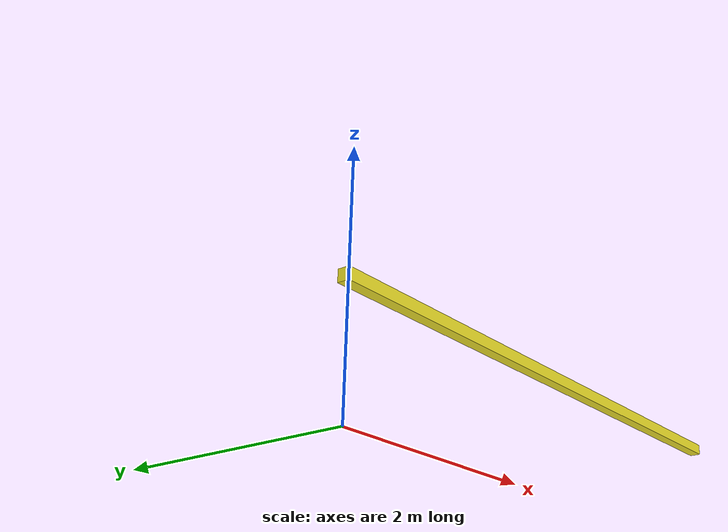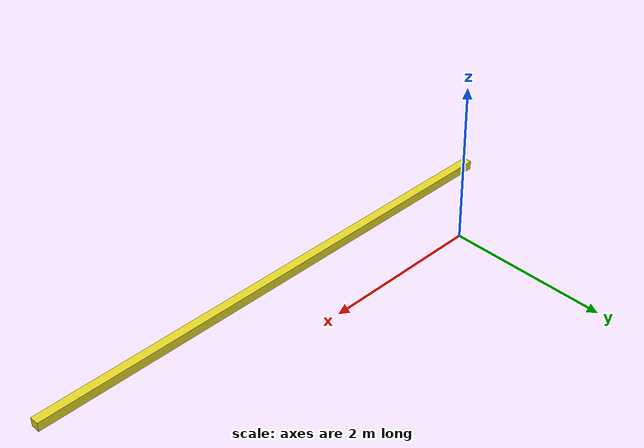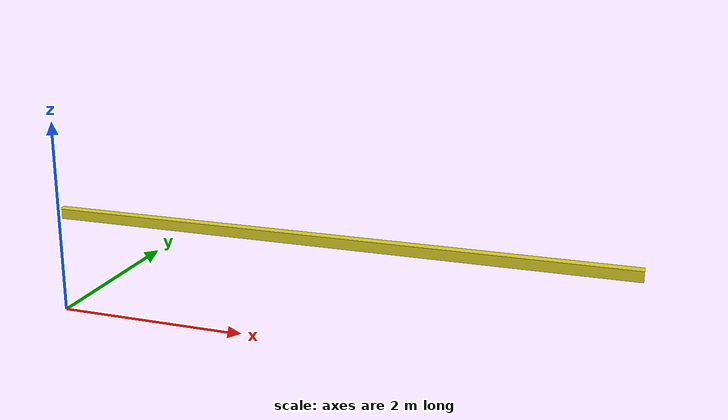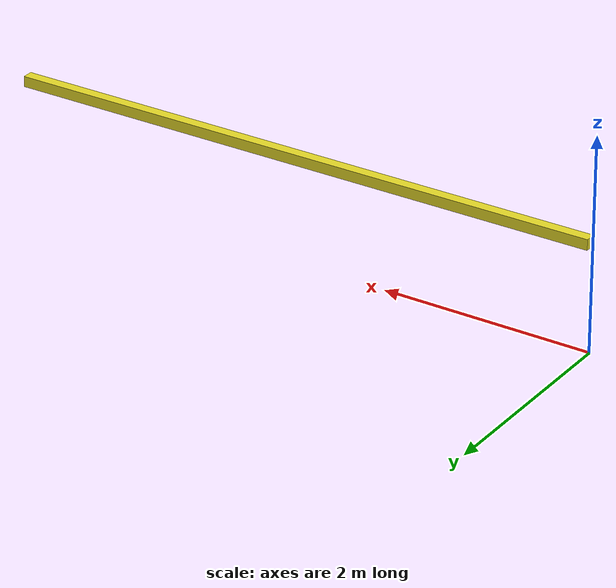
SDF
<?xml version="1.0" ?>
<sdf version="1.4">
  <model name="parking_line">
    <static>true</static>
    <link name="link">
      <inertial>
        <pose>0 0 1 0 0 0</pose>
        <mass>5</mass>
        <inertia>
          <ixx>0.833</ixx>
          <iyy>0.833</iyy>
          <izz>0.833</izz>
          <ixy>0</ixy>
          <ixz>0</ixz>
        </inertia>
      </inertial>
      <collision name="collision">
        <pose>0 0 1 0 0 0</pose>
        <geometry>
          <mesh>
            <uri>model://parking_line/meshes/parking_line.dae</uri>
            <scale>1 1 1</scale>
          </mesh>
        </geometry>
      </collision>

      <visual name="visual">
        <pose>0 0 1 0 0 0</pose>
        <geometry>
          <mesh>
            <uri>model://parking_line/meshes/parking_line.dae</uri>
            <scale>1 1 1</scale>
          </mesh>
        </geometry>
        <material>
          <script>
            <uri>model://parking_line/materials/scripts</uri>
            <uri>model://parking_line/materials/textures/</uri>
            <name>yellow</name>
          </script>
        </material>
      </visual>
    </link>
  </model>
</sdf>
